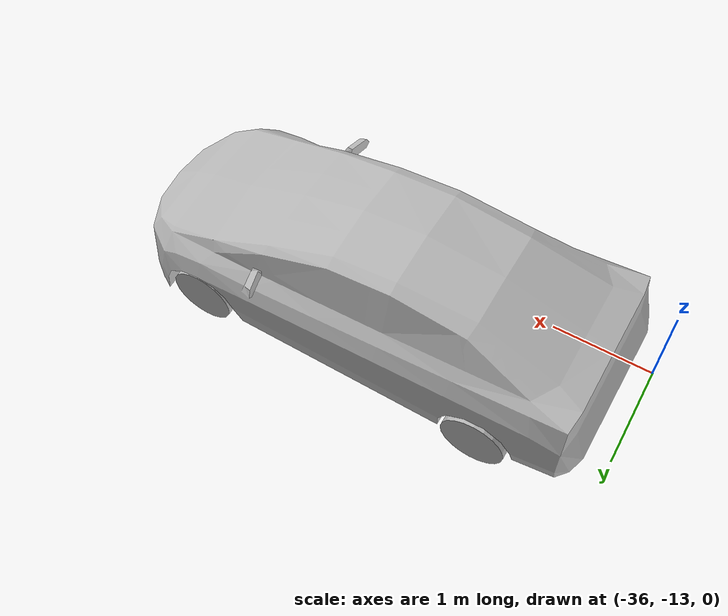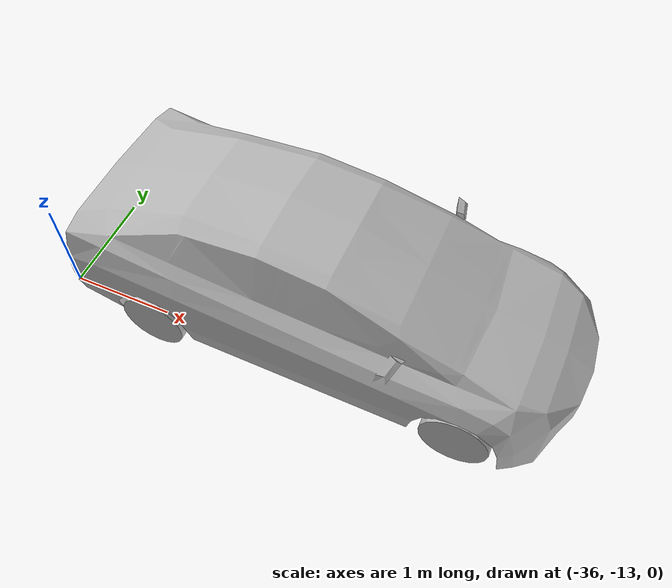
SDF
<sdf version="1.6">
 <world name="default">
  <model name="prius_slow">
   <link name="base_link">
    <inertial>
     <mass>1</mass>
     <inertia><ixx>0.001</ixx><ixy>0</ixy><ixz>0</ixz><iyy>0.001</iyy><iyz>0</iyz><izz>0.001</izz></inertia>
    </inertial>
   </link>
   <link name="pose_link">
    <pose>1.45 0 0 0 -0 0</pose>
    <inertial>
     <mass>1</mass>
     <inertia><ixx>0.001</ixx><ixy>0</ixy><ixz>0</ixz><iyy>0.001</iyy><iyz>0</iyz><izz>0.001</izz></inertia>
    </inertial>
   </link>
   <link name="chassis">
    <pose>1.45 0 0 0 -0 1.5708</pose>
    <inertial>
     <pose>-0 -0.002735 0.483209 0 -0 1.5708</pose>
     <mass>1371</mass>
     <inertia>
      <ixx>2591.3</ixx>
      <ixy>0.000184475</ixy>
      <ixz>-0.702035</ixz>
      <iyy>651.702</iyy>
      <iyz>2.57872e-06</iyz>
      <izz>2744.57</izz>
     </inertia>
    </inertial>
    <collision name="chassis_collision">
     <pose>0 0.05 0.625 0 -0 0</pose>
     <geometry><box><size>1.7526 2.1 0.95</size></box></geometry>
    </collision>
    <collision name="chassis_fixed_joint_lump__front_bumper_collision_1">
     <pose>0 -2 0.458488 0 -0 0</pose>
     <geometry><box><size>1.33728 0.48 0.566691</size></box></geometry>
    </collision>
    <collision name="chassis_fixed_joint_lump__hood_collision_2">
     <pose>0 -1.90084 0.676305 0.341247 -0 0</pose>
     <geometry><box><size>1.59797 0.493107 0.265468</size></box></geometry>
    </collision>
    <collision name="chassis_fixed_joint_lump__windshield_collision_3">
     <pose>0 -0.875105 1.03227 0.335476 -0 0</pose>
     <geometry><box><size>1.16838 1.65425 0.272347</size></box></geometry>
    </collision>
    <collision name="chassis_fixed_joint_lump__top_front_collision_4">
     <pose>0 0.161236 1.38604 0.13503 -0 0</pose>
     <geometry><box><size>1.27915 0.625988 0.171868</size></box></geometry>
    </collision>
    <collision name="chassis_fixed_joint_lump__top_rear_collision_5">
     <pose>0 0.817696 1.36007 -0.068997 0 0</pose>
     <geometry><box><size>1.28513 0.771189 0.226557</size></box></geometry>
    </collision>
    <collision name="chassis_fixed_joint_lump__rear_window_collision_6">
     <pose>0 1.64053 1.17513 -0.262017 0 0</pose>
     <geometry><box><size>1.26785 1.11634 0.244286</size></box></geometry>
    </collision>
    <collision name="chassis_fixed_joint_lump__trunk_collision_7">
     <pose>0 1.63706 0.88818 0 -0 0</pose>
     <geometry><box><size>1.78806 1.13899 0.482746</size></box></geometry>
    </collision>
    <collision name="chassis_fixed_joint_lump__back_bumper_collision_8">
     <pose>0 2.05445 0.57787 0 -0 0</pose>
     <geometry><box><size>1.78165 0.512093 0.581427</size></box></geometry>
    </collision>
    <visual name="chassis_visual">
     <geometry>
      <mesh>
       <scale>0.01 0.01 0.01</scale>
       <uri>/home/kostas/datmo_ws/src/car_demo-master/prius_description/meshes/hybrid_body.obj</uri>
      </mesh>
     </geometry>
    </visual>
   </link>
   <joint name="pose_link_connection" type="revolute">
    <child>chassis</child>
    <parent>pose_link</parent>
    <axis>
     <limit><lower>0</lower><upper>0</upper></limit>
     <dynamics>
      <damping>0</damping>
      <friction>0</friction>
      <spring_reference>0</spring_reference>
      <spring_stiffness>0</spring_stiffness>
     </dynamics>
     <use_parent_model_frame>1</use_parent_model_frame>
     <xyz>0 0 1</xyz>
    </axis>
    <physics><ode><limit><cfm>0</cfm><erp>0.2</erp></limit></ode></physics>
   </joint>
   <joint name="base_link_connection" type="revolute">
    <child>chassis</child>
    <parent>base_link</parent>
    <axis>
     <limit><lower>0</lower><upper>0</upper></limit>
     <dynamics>
      <damping>0</damping>
      <friction>0</friction>
      <spring_reference>0</spring_reference>
      <spring_stiffness>0</spring_stiffness>
     </dynamics>
     <use_parent_model_frame>1</use_parent_model_frame>
     <xyz>0 0 1</xyz>
    </axis>
    <physics><ode><limit><cfm>0</cfm><erp>0.2</erp></limit></ode></physics>
   </joint>
   <link name="fl_axle">
    <pose>2.86061 0.765877 0.3 0 -0 1.57</pose>
    <inertial>
     <mass>1</mass>
     <inertia><ixx>0.004</ixx><ixy>0</ixy><ixz>0</ixz><iyy>0.004</iyy><iyz>0</iyz><izz>0.004</izz></inertia>
    </inertial>
   </link>
   <joint name="front_left_steer_joint" type="revolute">
    <child>fl_axle</child>
    <parent>chassis</parent>
    <axis>
     <xyz>0 0 1</xyz>
     <limit><lower>-1e+16</lower><upper>1e+16</upper></limit>
     <dynamics><spring_reference>0</spring_reference><spring_stiffness>0</spring_stiffness></dynamics>
     <use_parent_model_frame>1</use_parent_model_frame>
    </axis>
   </joint>
   <link name="front_left_wheel">
    <pose>2.86061 0.765877 0.3 0 -0 1.57</pose>
    <inertial>
     <mass>11</mass>
     <inertia>
      <ixx>0.586312</ixx>
      <ixy>0</ixy>
      <ixz>0</ixz>
      <iyy>0.335529</iyy>
      <iyz>0</iyz>
      <izz>0.335529</izz>
     </inertia>
    </inertial>
    <collision name="front_left_wheel_collision_collision">
     <geometry><sphere><radius>0.31265</radius></sphere></geometry>
     <surface>
      <contact><ode><kp>1e+08</kp><min_depth>0.005</min_depth></ode></contact>
      <friction><ode><mu>0.9</mu><mu2>0.9</mu2></ode></friction>
     </surface>
    </collision>
    <visual name="front_left_wheel_visual">
     <geometry>
      <mesh>
       <scale>0.01 0.01 0.01</scale>
       <uri>/home/kostas/datmo_ws/src/car_demo-master/prius_description/meshes/wheel.obj</uri>
      </mesh>
     </geometry>
     <material><script><uri>__default__</uri><name>__default__</name></script></material>
    </visual>
   </link>
   <joint name="front_left_wheel_joint" type="revolute">
    <child>front_left_wheel</child>
    <parent>fl_axle</parent>
    <axis>
     <xyz>0.000796 1 0</xyz>
     <limit><lower>-1e+16</lower><upper>1e+16</upper></limit>
     <dynamics><spring_reference>0</spring_reference><spring_stiffness>0</spring_stiffness></dynamics>
     <use_parent_model_frame>1</use_parent_model_frame>
    </axis>
   </joint>
   <link name="fr_axle">
    <pose>2.85939 -0.768123 0.3 0 -0 1.57</pose>
    <inertial>
     <mass>1</mass>
     <inertia><ixx>0.004</ixx><ixy>0</ixy><ixz>0</ixz><iyy>0.004</iyy><iyz>0</iyz><izz>0.004</izz></inertia>
    </inertial>
   </link>
   <joint name="front_right_steer_joint" type="revolute">
    <child>fr_axle</child>
    <parent>chassis</parent>
    <axis>
     <xyz>0 0 1</xyz>
     <limit><lower>-1e+16</lower><upper>1e+16</upper></limit>
     <dynamics><spring_reference>0</spring_reference><spring_stiffness>0</spring_stiffness></dynamics>
     <use_parent_model_frame>1</use_parent_model_frame>
    </axis>
   </joint>
   <link name="front_right_wheel">
    <pose>2.85939 -0.768123 0.3 0 -0 1.57</pose>
    <inertial>
     <mass>11</mass>
     <inertia>
      <ixx>0.586312</ixx>
      <ixy>0</ixy>
      <ixz>0</ixz>
      <iyy>0.335529</iyy>
      <iyz>0</iyz>
      <izz>0.335529</izz>
     </inertia>
    </inertial>
    <collision name="front_right_wheel_collision_collision">
     <geometry><sphere><radius>0.31265</radius></sphere></geometry>
     <surface>
      <contact><ode><kp>1e+08</kp><min_depth>0.005</min_depth></ode></contact>
      <friction><ode><mu>0.9</mu><mu2>0.9</mu2></ode></friction>
     </surface>
    </collision>
    <visual name="front_right_wheel_visual">
     <geometry>
      <mesh>
       <scale>0.01 0.01 0.01</scale>
       <uri>/home/kostas/datmo_ws/src/car_demo-master/prius_description/meshes/wheel.obj</uri>
      </mesh>
     </geometry>
     <material><script><uri>__default__</uri><name>__default__</name></script></material>
    </visual>
   </link>
   <joint name="front_right_wheel_joint" type="revolute">
    <child>front_right_wheel</child>
    <parent>fr_axle</parent>
    <axis>
     <xyz>0.000796 1 0</xyz>
     <limit><lower>-1e+16</lower><upper>1e+16</upper></limit>
     <dynamics><spring_reference>0</spring_reference><spring_stiffness>0</spring_stiffness></dynamics>
     <use_parent_model_frame>1</use_parent_model_frame>
    </axis>
   </joint>
   <link name="rear_left_wheel">
    <pose>0.000632 0.794154 0.3 0 -0 1.57</pose>
    <inertial>
     <mass>11</mass>
     <inertia>
      <ixx>0.586312</ixx>
      <ixy>0</ixy>
      <ixz>0</ixz>
      <iyy>0.335529</iyy>
      <iyz>0</iyz>
      <izz>0.335529</izz>
     </inertia>
    </inertial>
    <collision name="rear_left_wheel_collision_collision">
     <geometry><sphere><radius>0.31265</radius></sphere></geometry>
     <surface>
      <contact><ode><kp>1e+08</kp><min_depth>0.005</min_depth></ode></contact>
      <friction><ode><mu>0.9</mu><mu2>0.9</mu2></ode></friction>
     </surface>
    </collision>
    <visual name="rear_left_wheel_visual">
     <geometry>
      <mesh>
       <scale>0.01 0.01 0.01</scale>
       <uri>/home/kostas/datmo_ws/src/car_demo-master/prius_description/meshes/wheel.obj</uri>
      </mesh>
     </geometry>
     <material><script><uri>__default__</uri><name>__default__</name></script></material>
    </visual>
   </link>
   <joint name="rear_left_wheel_joint" type="revolute">
    <child>rear_left_wheel</child>
    <parent>chassis</parent>
    <axis>
     <xyz>0.000796 1 0</xyz>
     <limit><lower>-1e+16</lower><upper>1e+16</upper></limit>
     <dynamics><spring_reference>0</spring_reference><spring_stiffness>0</spring_stiffness></dynamics>
     <use_parent_model_frame>1</use_parent_model_frame>
    </axis>
   </joint>
   <link name="rear_right_wheel">
    <pose>-0.000631 -0.791845 0.3 0 -0 1.57</pose>
    <inertial>
     <mass>11</mass>
     <inertia>
      <ixx>0.586312</ixx>
      <ixy>0</ixy>
      <ixz>0</ixz>
      <iyy>0.335529</iyy>
      <iyz>0</iyz>
      <izz>0.335529</izz>
     </inertia>
    </inertial>
    <collision name="rear_right_wheel_collision_collision">
     <geometry><sphere><radius>0.31265</radius></sphere></geometry>
     <surface>
      <contact><ode><kp>1e+08</kp><min_depth>0.005</min_depth></ode></contact>
      <friction><ode><mu>0.9</mu><mu2>0.9</mu2></ode></friction>
     </surface>
    </collision>
    <visual name="rear_right_wheel_visual">
     <geometry>
      <mesh>
       <scale>0.01 0.01 0.01</scale>
       <uri>/home/kostas/datmo_ws/src/car_demo-master/prius_description/meshes/wheel.obj</uri>
      </mesh>
     </geometry>
     <material><script><uri>__default__</uri><name>__default__</name></script></material>
    </visual>
   </link>
   <joint name="rear_right_wheel_joint" type="revolute">
    <child>rear_right_wheel</child>
    <parent>chassis</parent>
    <axis>
     <xyz>0.000796 1 0</xyz>
     <limit><lower>-1e+16</lower><upper>1e+16</upper></limit>
     <dynamics><spring_reference>0</spring_reference><spring_stiffness>0</spring_stiffness></dynamics>
     <use_parent_model_frame>1</use_parent_model_frame>
    </axis>
   </joint>
   <link name="steering_wheel">
    <pose>2.07815 0.357234 0.988243 -1.3021 0 1.57</pose>
    <inertial>
     <mass>1</mass>
     <inertia><ixx>0.145833</ixx><ixy>0</ixy><ixz>0</ixz><iyy>0.145833</iyy><iyz>0</iyz><izz>0.125</izz></inertia>
    </inertial>
    <visual name="steering_wheel_visual">
     <pose>0 0 0 1.3021 -0 0</pose>
     <geometry>
      <mesh>
       <scale>0.01 0.01 0.01</scale>
       <uri>/home/kostas/datmo_ws/src/car_demo-master/prius_description/meshes/steering_wheel.obj</uri>
      </mesh>
     </geometry>
    </visual>
   </link>
   <joint name="steering_joint" type="revolute">
    <child>steering_wheel</child>
    <parent>chassis</parent>
    <axis>
     <xyz>-0.964118 0.000768 0.265474</xyz>
     <limit><lower>-1e+16</lower><upper>1e+16</upper></limit>
     <dynamics><spring_reference>0</spring_reference><spring_stiffness>0</spring_stiffness></dynamics>
     <use_parent_model_frame>1</use_parent_model_frame>
    </axis>
   </joint>
   <plugin name="actorhybrid_drive" filename="libActor.so">
    <controlTopic>slow</controlTopic>
    <chassis>chassis</chassis>
    <front_left_wheel>front_left_wheel_joint</front_left_wheel>
    <front_right_wheel>front_right_wheel_joint</front_right_wheel>
    <front_left_wheel_steering>front_left_steer_joint</front_left_wheel_steering>
    <front_right_wheel_steering>front_right_steer_joint</front_right_wheel_steering>
    <back_left_wheel>rear_left_wheel_joint</back_left_wheel>
    <back_right_wheel>rear_right_wheel_joint</back_right_wheel>
    <steering_wheel>steering_joint</steering_wheel>
    <chassis_aero_force_gain>0.63045</chassis_aero_force_gain>
    <front_torque>700.4004393000001</front_torque>
    <back_torque>0</back_torque>
    <front_brake_torque>1031.28052716</front_brake_torque>
    <back_brake_torque>687.5203514400001</back_brake_torque>
    <max_speed>5</max_speed>
    <min_gas_flow>8.981854013171626e-05</min_gas_flow>
    <gas_efficiency>0.371</gas_efficiency>
    <battery_charge_watt_hours>291</battery_charge_watt_hours>
    <battery_discharge_watt_hours>214</battery_discharge_watt_hours>
    <max_steer>0.8458</max_steer>
    <flwheel_steering_p_gain>1e4</flwheel_steering_p_gain>
    <frwheel_steering_p_gain>1e4</frwheel_steering_p_gain>
    <flwheel_steering_i_gain>0</flwheel_steering_i_gain>
    <frwheel_steering_i_gain>0</frwheel_steering_i_gain>
    <flwheel_steering_d_gain>3e2</flwheel_steering_d_gain>
    <frwheel_steering_d_gain>3e2</frwheel_steering_d_gain>
    <robotNamespace>/</robotNamespace>
   </plugin>
   <plugin name="joint_state_publisher" filename="libgazebo_ros_joint_state_publisher.so">
    <jointName>rear_right_wheel_joint, rear_left_wheel_joint, front_right_wheel_joint, front_left_wheel_joint, front_right_steer_joint, front_left_steer_joint, steering_joint</jointName>
    <updateRate>100.0</updateRate>
    <alwaysOn>1</alwaysOn>
    <robotNamespace>/</robotNamespace>
   </plugin>
   <static>0</static>
   <plugin name="p3d" filename="libgazebo_ros_p3d.so">
    <bodyName>pose_link</bodyName>
    <topicName>prius_slow</topicName>
    <frameName>map</frameName>
    <updateRate>100.0</updateRate>
    <robotNamespace>/</robotNamespace>
   </plugin>
   <pose>-34.9002 -12.3619 0.006903 0 0.000236 -0.013296</pose>
  </model>
 </world>
</sdf>
